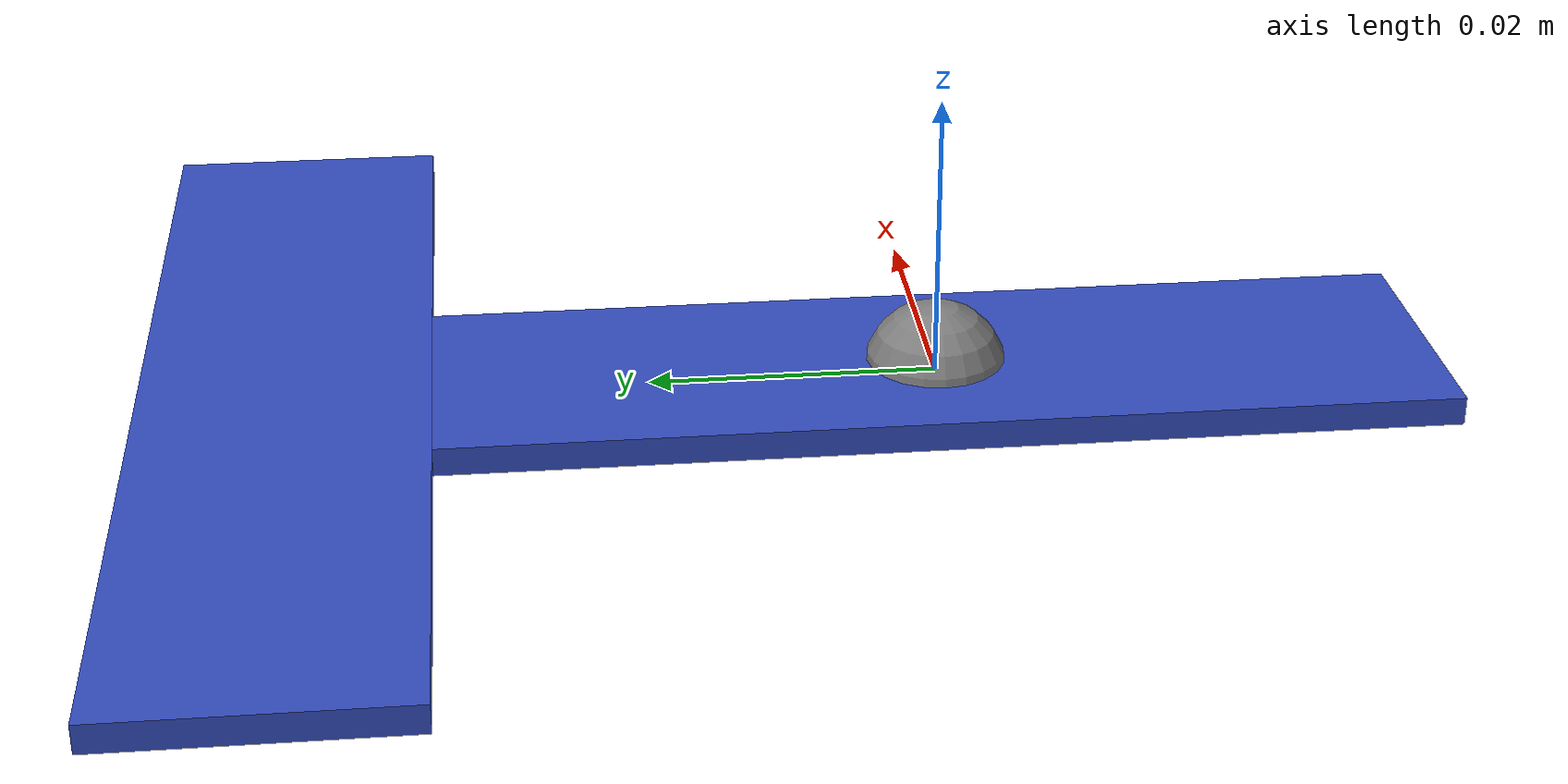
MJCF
<!-- T形物体目标点（纯视觉标识，无碰撞；位置由场景 mount 决定） -->
<mujoco model="t_target">
  <worldbody>
    <body name="t_target">
      <inertial mass="0.08" diaginertia="5e-5 3e-5 8e-5" pos="0 0 0"/>
      <geom name="t_target_stem" type="box" size="0.01 0.035 0.001" rgba="0.2 0.3 0.75 1" contype="0" conaffinity="0" group="2"/>
      <geom name="t_target_cross" type="box" size="0.04 0.01 0.001" pos="0 0.045 0" rgba="0.2 0.3 0.75 1" contype="0" conaffinity="0" group="2"/>
      <site name="t_target_center" size="0.005"/>
    </body>
  </worldbody>
</mujoco>
